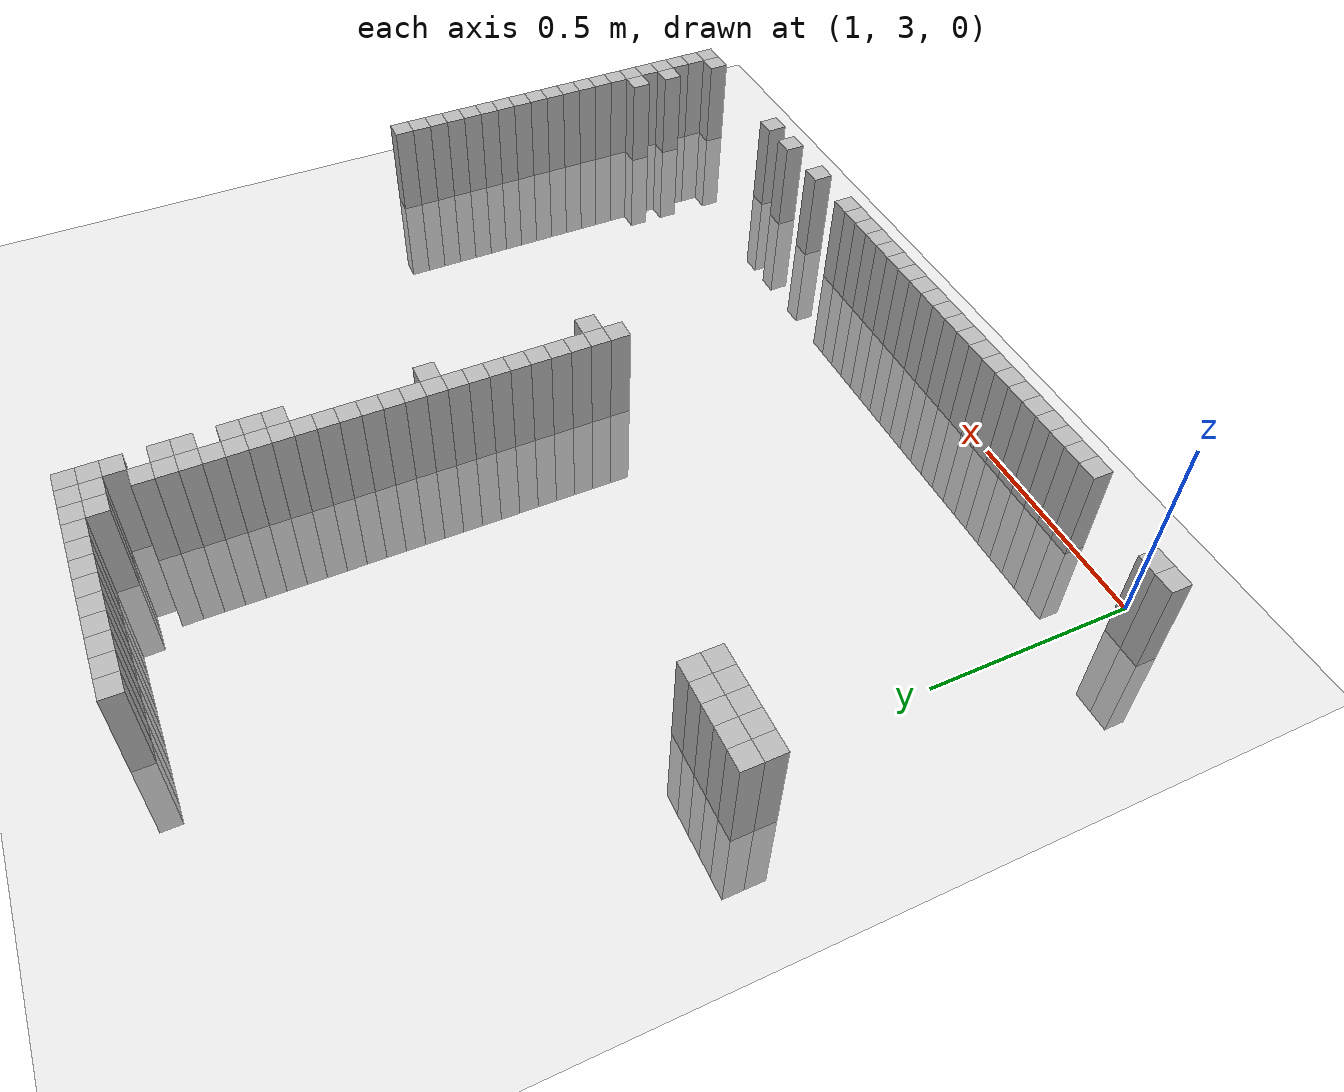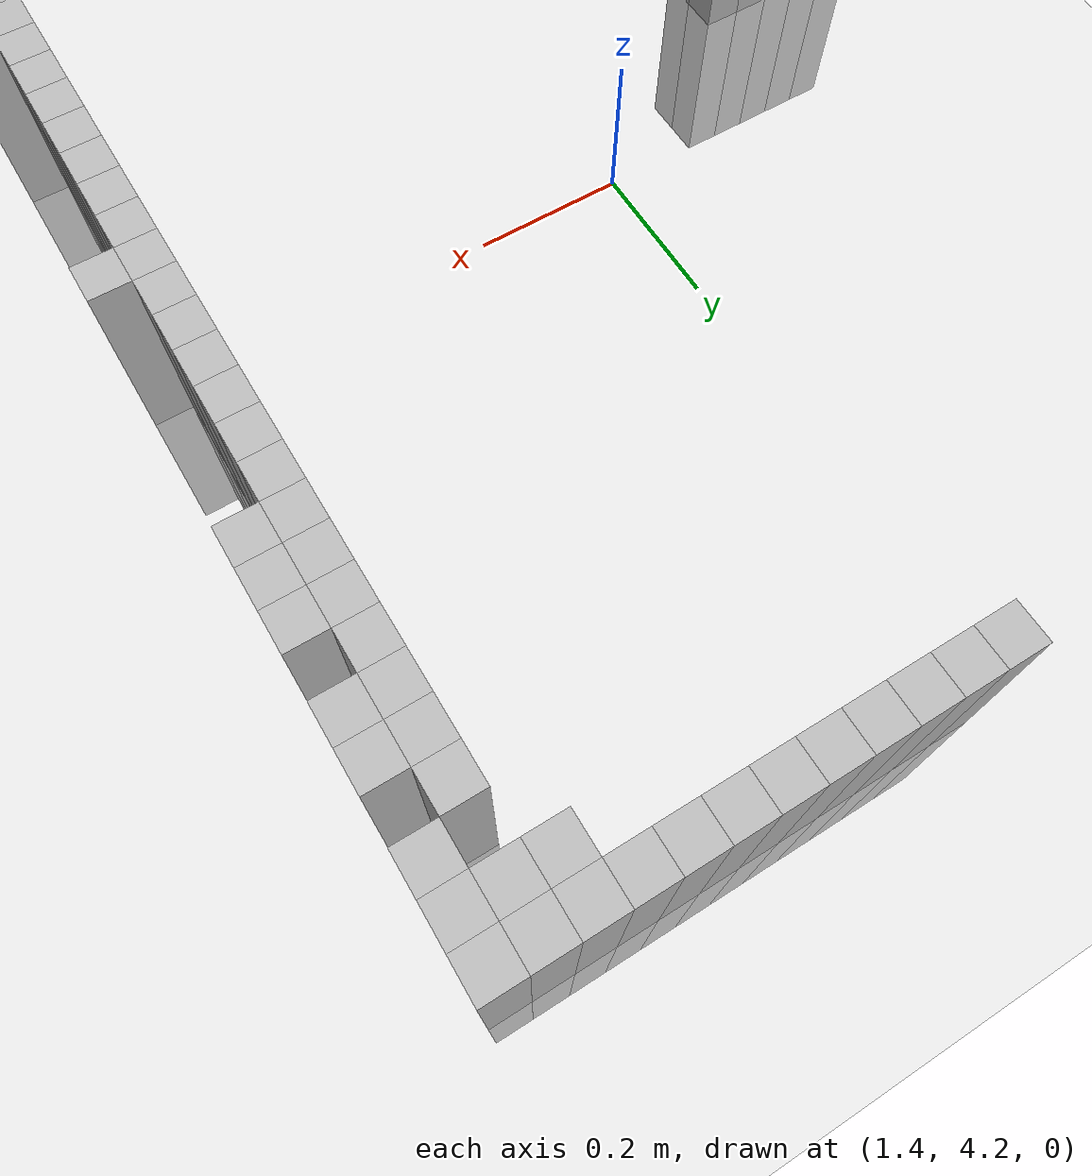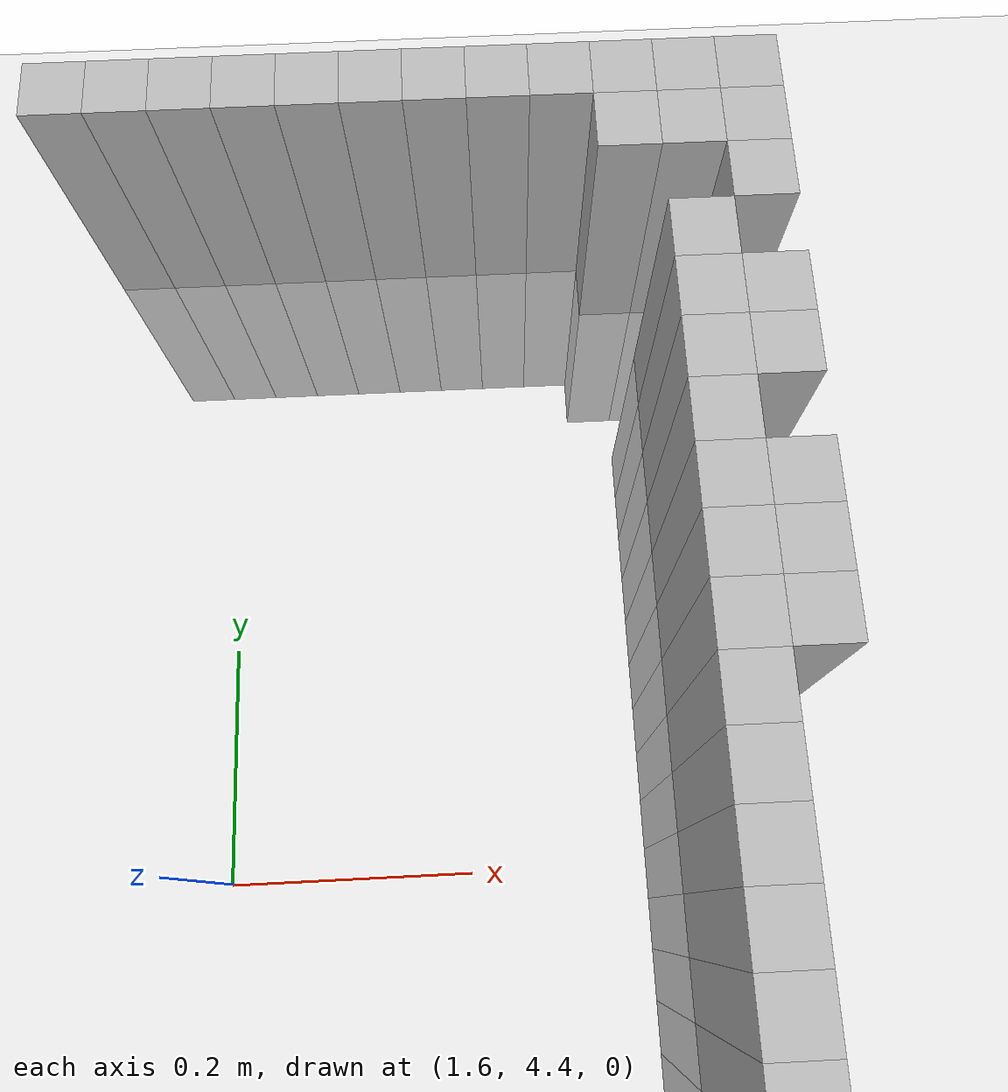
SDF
<sdf version="1.6">
 <world name="my_exploration_world">
  <include><uri>model://ground_plane</uri></include>
  <include><uri>model://sun</uri></include>
  <model name="obstacle_521">
   <pose>1.2000001668930054 3.0000001937150955 0 0 0 0</pose>
   <link name="link">
    <collision name="collision">
     <geometry><box><size>0.05000000074505806 0.05000000074505806 0.5</size></box></geometry>
    </collision>
    <visual name="visual">
     <geometry><box><size>0.05000000074505806 0.05000000074505806 0.5</size></box></geometry>
    </visual>
   </link>
   <static>true</static>
  </model>
  <model name="obstacle_522">
   <pose>1.2500001676380634 3.0000001937150955 0 0 0 0</pose>
   <link name="link">
    <collision name="collision">
     <geometry><box><size>0.05000000074505806 0.05000000074505806 0.5</size></box></geometry>
    </collision>
    <visual name="visual">
     <geometry><box><size>0.05000000074505806 0.05000000074505806 0.5</size></box></geometry>
    </visual>
   </link>
   <static>true</static>
  </model>
  <model name="obstacle_523">
   <pose>1.3000001683831215 3.0000001937150955 0 0 0 0</pose>
   <link name="link">
    <collision name="collision">
     <geometry><box><size>0.05000000074505806 0.05000000074505806 0.5</size></box></geometry>
    </collision>
    <visual name="visual">
     <geometry><box><size>0.05000000074505806 0.05000000074505806 0.5</size></box></geometry>
    </visual>
   </link>
   <static>true</static>
  </model>
  <model name="obstacle_524">
   <pose>1.3500001691281796 3.0000001937150955 0 0 0 0</pose>
   <link name="link">
    <collision name="collision">
     <geometry><box><size>0.05000000074505806 0.05000000074505806 0.5</size></box></geometry>
    </collision>
    <visual name="visual">
     <geometry><box><size>0.05000000074505806 0.05000000074505806 0.5</size></box></geometry>
    </visual>
   </link>
   <static>true</static>
  </model>
  <model name="obstacle_525">
   <pose>1.4000001698732376 3.0000001937150955 0 0 0 0</pose>
   <link name="link">
    <collision name="collision">
     <geometry><box><size>0.05000000074505806 0.05000000074505806 0.5</size></box></geometry>
    </collision>
    <visual name="visual">
     <geometry><box><size>0.05000000074505806 0.05000000074505806 0.5</size></box></geometry>
    </visual>
   </link>
   <static>true</static>
  </model>
  <model name="obstacle_526">
   <pose>1.4500001706182957 3.0000001937150955 0 0 0 0</pose>
   <link name="link">
    <collision name="collision">
     <geometry><box><size>0.05000000074505806 0.05000000074505806 0.5</size></box></geometry>
    </collision>
    <visual name="visual">
     <geometry><box><size>0.05000000074505806 0.05000000074505806 0.5</size></box></geometry>
    </visual>
   </link>
   <static>true</static>
  </model>
  <model name="obstacle_527">
   <pose>1.5000001713633537 3.0000001937150955 0 0 0 0</pose>
   <link name="link">
    <collision name="collision">
     <geometry><box><size>0.05000000074505806 0.05000000074505806 0.5</size></box></geometry>
    </collision>
    <visual name="visual">
     <geometry><box><size>0.05000000074505806 0.05000000074505806 0.5</size></box></geometry>
    </visual>
   </link>
   <static>true</static>
  </model>
  <model name="obstacle_528">
   <pose>1.5500001721084118 3.0000001937150955 0 0 0 0</pose>
   <link name="link">
    <collision name="collision">
     <geometry><box><size>0.05000000074505806 0.05000000074505806 0.5</size></box></geometry>
    </collision>
    <visual name="visual">
     <geometry><box><size>0.05000000074505806 0.05000000074505806 0.5</size></box></geometry>
    </visual>
   </link>
   <static>true</static>
  </model>
  <model name="obstacle_529">
   <pose>1.6000001728534698 3.0000001937150955 0 0 0 0</pose>
   <link name="link">
    <collision name="collision">
     <geometry><box><size>0.05000000074505806 0.05000000074505806 0.5</size></box></geometry>
    </collision>
    <visual name="visual">
     <geometry><box><size>0.05000000074505806 0.05000000074505806 0.5</size></box></geometry>
    </visual>
   </link>
   <static>true</static>
  </model>
  <model name="obstacle_530">
   <pose>1.650000173598528 3.0000001937150955 0 0 0 0</pose>
   <link name="link">
    <collision name="collision">
     <geometry><box><size>0.05000000074505806 0.05000000074505806 0.5</size></box></geometry>
    </collision>
    <visual name="visual">
     <geometry><box><size>0.05000000074505806 0.05000000074505806 0.5</size></box></geometry>
    </visual>
   </link>
   <static>true</static>
  </model>
  <model name="obstacle_531">
   <pose>1.700000174343586 3.0000001937150955 0 0 0 0</pose>
   <link name="link">
    <collision name="collision">
     <geometry><box><size>0.05000000074505806 0.05000000074505806 0.5</size></box></geometry>
    </collision>
    <visual name="visual">
     <geometry><box><size>0.05000000074505806 0.05000000074505806 0.5</size></box></geometry>
    </visual>
   </link>
   <static>true</static>
  </model>
  <model name="obstacle_532">
   <pose>1.750000175088644 3.0000001937150955 0 0 0 0</pose>
   <link name="link">
    <collision name="collision">
     <geometry><box><size>0.05000000074505806 0.05000000074505806 0.5</size></box></geometry>
    </collision>
    <visual name="visual">
     <geometry><box><size>0.05000000074505806 0.05000000074505806 0.5</size></box></geometry>
    </visual>
   </link>
   <static>true</static>
  </model>
  <model name="obstacle_533">
   <pose>1.800000175833702 3.0000001937150955 0 0 0 0</pose>
   <link name="link">
    <collision name="collision">
     <geometry><box><size>0.05000000074505806 0.05000000074505806 0.5</size></box></geometry>
    </collision>
    <visual name="visual">
     <geometry><box><size>0.05000000074505806 0.05000000074505806 0.5</size></box></geometry>
    </visual>
   </link>
   <static>true</static>
  </model>
  <model name="obstacle_534">
   <pose>1.8500001765787601 3.0000001937150955 0 0 0 0</pose>
   <link name="link">
    <collision name="collision">
     <geometry><box><size>0.05000000074505806 0.05000000074505806 0.5</size></box></geometry>
    </collision>
    <visual name="visual">
     <geometry><box><size>0.05000000074505806 0.05000000074505806 0.5</size></box></geometry>
    </visual>
   </link>
   <static>true</static>
  </model>
  <model name="obstacle_535">
   <pose>1.9000001773238182 3.0000001937150955 0 0 0 0</pose>
   <link name="link">
    <collision name="collision">
     <geometry><box><size>0.05000000074505806 0.05000000074505806 0.5</size></box></geometry>
    </collision>
    <visual name="visual">
     <geometry><box><size>0.05000000074505806 0.05000000074505806 0.5</size></box></geometry>
    </visual>
   </link>
   <static>true</static>
  </model>
  <model name="obstacle_536">
   <pose>1.9500001780688763 3.0000001937150955 0 0 0 0</pose>
   <link name="link">
    <collision name="collision">
     <geometry><box><size>0.05000000074505806 0.05000000074505806 0.5</size></box></geometry>
    </collision>
    <visual name="visual">
     <geometry><box><size>0.05000000074505806 0.05000000074505806 0.5</size></box></geometry>
    </visual>
   </link>
   <static>true</static>
  </model>
  <model name="obstacle_537">
   <pose>2.0000001788139343 3.0000001937150955 0 0 0 0</pose>
   <link name="link">
    <collision name="collision">
     <geometry><box><size>0.05000000074505806 0.05000000074505806 0.5</size></box></geometry>
    </collision>
    <visual name="visual">
     <geometry><box><size>0.05000000074505806 0.05000000074505806 0.5</size></box></geometry>
    </visual>
   </link>
   <static>true</static>
  </model>
  <model name="obstacle_538">
   <pose>2.0500001795589924 3.0000001937150955 0 0 0 0</pose>
   <link name="link">
    <collision name="collision">
     <geometry><box><size>0.05000000074505806 0.05000000074505806 0.5</size></box></geometry>
    </collision>
    <visual name="visual">
     <geometry><box><size>0.05000000074505806 0.05000000074505806 0.5</size></box></geometry>
    </visual>
   </link>
   <static>true</static>
  </model>
  <model name="obstacle_539">
   <pose>2.1000001803040504 3.0000001937150955 0 0 0 0</pose>
   <link name="link">
    <collision name="collision">
     <geometry><box><size>0.05000000074505806 0.05000000074505806 0.5</size></box></geometry>
    </collision>
    <visual name="visual">
     <geometry><box><size>0.05000000074505806 0.05000000074505806 0.5</size></box></geometry>
    </visual>
   </link>
   <static>true</static>
  </model>
  <model name="obstacle_540">
   <pose>2.1500001810491085 3.0000001937150955 0 0 0 0</pose>
   <link name="link">
    <collision name="collision">
     <geometry><box><size>0.05000000074505806 0.05000000074505806 0.5</size></box></geometry>
    </collision>
    <visual name="visual">
     <geometry><box><size>0.05000000074505806 0.05000000074505806 0.5</size></box></geometry>
    </visual>
   </link>
   <static>true</static>
  </model>
  <model name="obstacle_541">
   <pose>2.2000001817941666 3.0000001937150955 0 0 0 0</pose>
   <link name="link">
    <collision name="collision">
     <geometry><box><size>0.05000000074505806 0.05000000074505806 0.5</size></box></geometry>
    </collision>
    <visual name="visual">
     <geometry><box><size>0.05000000074505806 0.05000000074505806 0.5</size></box></geometry>
    </visual>
   </link>
   <static>true</static>
  </model>
  <model name="obstacle_542">
   <pose>2.3500001840293407 3.0000001937150955 0 0 0 0</pose>
   <link name="link">
    <collision name="collision">
     <geometry><box><size>0.05000000074505806 0.05000000074505806 0.5</size></box></geometry>
    </collision>
    <visual name="visual">
     <geometry><box><size>0.05000000074505806 0.05000000074505806 0.5</size></box></geometry>
    </visual>
   </link>
   <static>true</static>
  </model>
  <model name="obstacle_543">
   <pose>2.500000186264515 3.0000001937150955 0 0 0 0</pose>
   <link name="link">
    <collision name="collision">
     <geometry><box><size>0.05000000074505806 0.05000000074505806 0.5</size></box></geometry>
    </collision>
    <visual name="visual">
     <geometry><box><size>0.05000000074505806 0.05000000074505806 0.5</size></box></geometry>
    </visual>
   </link>
   <static>true</static>
  </model>
  <model name="obstacle_544">
   <pose>2.600000187754631 3.0000001937150955 0 0 0 0</pose>
   <link name="link">
    <collision name="collision">
     <geometry><box><size>0.05000000074505806 0.05000000074505806 0.5</size></box></geometry>
    </collision>
    <visual name="visual">
     <geometry><box><size>0.05000000074505806 0.05000000074505806 0.5</size></box></geometry>
    </visual>
   </link>
   <static>true</static>
  </model>
  <model name="obstacle_545">
   <pose>2.9500001929700375 3.0000001937150955 0 0 0 0</pose>
   <link name="link">
    <collision name="collision">
     <geometry><box><size>0.05000000074505806 0.05000000074505806 0.5</size></box></geometry>
    </collision>
    <visual name="visual">
     <geometry><box><size>0.05000000074505806 0.05000000074505806 0.5</size></box></geometry>
    </visual>
   </link>
   <static>true</static>
  </model>
  <model name="obstacle_546">
   <pose>3.0000001937150955 3.0000001937150955 0 0 0 0</pose>
   <link name="link">
    <collision name="collision">
     <geometry><box><size>0.05000000074505806 0.05000000074505806 0.5</size></box></geometry>
    </collision>
    <visual name="visual">
     <geometry><box><size>0.05000000074505806 0.05000000074505806 0.5</size></box></geometry>
    </visual>
   </link>
   <static>true</static>
  </model>
  <model name="obstacle_568">
   <pose>0.900000162422657 3.0500001944601536 0 0 0 0</pose>
   <link name="link">
    <collision name="collision">
     <geometry><box><size>0.05000000074505806 0.05000000074505806 0.5</size></box></geometry>
    </collision>
    <visual name="visual">
     <geometry><box><size>0.05000000074505806 0.05000000074505806 0.5</size></box></geometry>
    </visual>
   </link>
   <static>true</static>
  </model>
  <model name="obstacle_569">
   <pose>0.9500001631677151 3.0500001944601536 0 0 0 0</pose>
   <link name="link">
    <collision name="collision">
     <geometry><box><size>0.05000000074505806 0.05000000074505806 0.5</size></box></geometry>
    </collision>
    <visual name="visual">
     <geometry><box><size>0.05000000074505806 0.05000000074505806 0.5</size></box></geometry>
    </visual>
   </link>
   <static>true</static>
  </model>
  <model name="obstacle_570">
   <pose>3.0000001937150955 3.0500001944601536 0 0 0 0</pose>
   <link name="link">
    <collision name="collision">
     <geometry><box><size>0.05000000074505806 0.05000000074505806 0.5</size></box></geometry>
    </collision>
    <visual name="visual">
     <geometry><box><size>0.05000000074505806 0.05000000074505806 0.5</size></box></geometry>
    </visual>
   </link>
   <static>true</static>
  </model>
  <model name="obstacle_573">
   <pose>3.0000001937150955 3.1000001952052116 0 0 0 0</pose>
   <link name="link">
    <collision name="collision">
     <geometry><box><size>0.05000000074505806 0.05000000074505806 0.5</size></box></geometry>
    </collision>
    <visual name="visual">
     <geometry><box><size>0.05000000074505806 0.05000000074505806 0.5</size></box></geometry>
    </visual>
   </link>
   <static>true</static>
  </model>
  <model name="obstacle_575">
   <pose>2.9500001929700375 3.1500001959502697 0 0 0 0</pose>
   <link name="link">
    <collision name="collision">
     <geometry><box><size>0.05000000074505806 0.05000000074505806 0.5</size></box></geometry>
    </collision>
    <visual name="visual">
     <geometry><box><size>0.05000000074505806 0.05000000074505806 0.5</size></box></geometry>
    </visual>
   </link>
   <static>true</static>
  </model>
  <model name="obstacle_576">
   <pose>3.0000001937150955 3.1500001959502697 0 0 0 0</pose>
   <link name="link">
    <collision name="collision">
     <geometry><box><size>0.05000000074505806 0.05000000074505806 0.5</size></box></geometry>
    </collision>
    <visual name="visual">
     <geometry><box><size>0.05000000074505806 0.05000000074505806 0.5</size></box></geometry>
    </visual>
   </link>
   <static>true</static>
  </model>
  <model name="obstacle_578">
   <pose>3.0000001937150955 3.2000001966953278 0 0 0 0</pose>
   <link name="link">
    <collision name="collision">
     <geometry><box><size>0.05000000074505806 0.05000000074505806 0.5</size></box></geometry>
    </collision>
    <visual name="visual">
     <geometry><box><size>0.05000000074505806 0.05000000074505806 0.5</size></box></geometry>
    </visual>
   </link>
   <static>true</static>
  </model>
  <model name="obstacle_581">
   <pose>2.9500001929700375 3.250000197440386 0 0 0 0</pose>
   <link name="link">
    <collision name="collision">
     <geometry><box><size>0.05000000074505806 0.05000000074505806 0.5</size></box></geometry>
    </collision>
    <visual name="visual">
     <geometry><box><size>0.05000000074505806 0.05000000074505806 0.5</size></box></geometry>
    </visual>
   </link>
   <static>true</static>
  </model>
  <model name="obstacle_582">
   <pose>3.0000001937150955 3.250000197440386 0 0 0 0</pose>
   <link name="link">
    <collision name="collision">
     <geometry><box><size>0.05000000074505806 0.05000000074505806 0.5</size></box></geometry>
    </collision>
    <visual name="visual">
     <geometry><box><size>0.05000000074505806 0.05000000074505806 0.5</size></box></geometry>
    </visual>
   </link>
   <static>true</static>
  </model>
  <model name="obstacle_585">
   <pose>3.0000001937150955 3.300000198185444 0 0 0 0</pose>
   <link name="link">
    <collision name="collision">
     <geometry><box><size>0.05000000074505806 0.05000000074505806 0.5</size></box></geometry>
    </collision>
    <visual name="visual">
     <geometry><box><size>0.05000000074505806 0.05000000074505806 0.5</size></box></geometry>
    </visual>
   </link>
   <static>true</static>
  </model>
  <model name="obstacle_588">
   <pose>3.0000001937150955 3.350000198930502 0 0 0 0</pose>
   <link name="link">
    <collision name="collision">
     <geometry><box><size>0.05000000074505806 0.05000000074505806 0.5</size></box></geometry>
    </collision>
    <visual name="visual">
     <geometry><box><size>0.05000000074505806 0.05000000074505806 0.5</size></box></geometry>
    </visual>
   </link>
   <static>true</static>
  </model>
  <model name="obstacle_591">
   <pose>3.0000001937150955 3.40000019967556 0 0 0 0</pose>
   <link name="link">
    <collision name="collision">
     <geometry><box><size>0.05000000074505806 0.05000000074505806 0.5</size></box></geometry>
    </collision>
    <visual name="visual">
     <geometry><box><size>0.05000000074505806 0.05000000074505806 0.5</size></box></geometry>
    </visual>
   </link>
   <static>true</static>
  </model>
  <model name="obstacle_594">
   <pose>3.0000001937150955 3.450000200420618 0 0 0 0</pose>
   <link name="link">
    <collision name="collision">
     <geometry><box><size>0.05000000074505806 0.05000000074505806 0.5</size></box></geometry>
    </collision>
    <visual name="visual">
     <geometry><box><size>0.05000000074505806 0.05000000074505806 0.5</size></box></geometry>
    </visual>
   </link>
   <static>true</static>
  </model>
  <model name="obstacle_597">
   <pose>3.0000001937150955 3.500000201165676 0 0 0 0</pose>
   <link name="link">
    <collision name="collision">
     <geometry><box><size>0.05000000074505806 0.05000000074505806 0.5</size></box></geometry>
    </collision>
    <visual name="visual">
     <geometry><box><size>0.05000000074505806 0.05000000074505806 0.5</size></box></geometry>
    </visual>
   </link>
   <static>true</static>
  </model>
  <model name="obstacle_599">
   <pose>3.0000001937150955 3.550000201910734 0 0 0 0</pose>
   <link name="link">
    <collision name="collision">
     <geometry><box><size>0.05000000074505806 0.05000000074505806 0.5</size></box></geometry>
    </collision>
    <visual name="visual">
     <geometry><box><size>0.05000000074505806 0.05000000074505806 0.5</size></box></geometry>
    </visual>
   </link>
   <static>true</static>
  </model>
  <model name="obstacle_601">
   <pose>3.0000001937150955 3.6000002026557922 0 0 0 0</pose>
   <link name="link">
    <collision name="collision">
     <geometry><box><size>0.05000000074505806 0.05000000074505806 0.5</size></box></geometry>
    </collision>
    <visual name="visual">
     <geometry><box><size>0.05000000074505806 0.05000000074505806 0.5</size></box></geometry>
    </visual>
   </link>
   <static>true</static>
  </model>
  <model name="obstacle_603">
   <pose>3.0000001937150955 3.6500002034008503 0 0 0 0</pose>
   <link name="link">
    <collision name="collision">
     <geometry><box><size>0.05000000074505806 0.05000000074505806 0.5</size></box></geometry>
    </collision>
    <visual name="visual">
     <geometry><box><size>0.05000000074505806 0.05000000074505806 0.5</size></box></geometry>
    </visual>
   </link>
   <static>true</static>
  </model>
  <model name="obstacle_605">
   <pose>3.0000001937150955 3.7000002041459084 0 0 0 0</pose>
   <link name="link">
    <collision name="collision">
     <geometry><box><size>0.05000000074505806 0.05000000074505806 0.5</size></box></geometry>
    </collision>
    <visual name="visual">
     <geometry><box><size>0.05000000074505806 0.05000000074505806 0.5</size></box></geometry>
    </visual>
   </link>
   <static>true</static>
  </model>
  <model name="obstacle_607">
   <pose>2.0000001788139343 3.7500002048909664 0 0 0 0</pose>
   <link name="link">
    <collision name="collision">
     <geometry><box><size>0.05000000074505806 0.05000000074505806 0.5</size></box></geometry>
    </collision>
    <visual name="visual">
     <geometry><box><size>0.05000000074505806 0.05000000074505806 0.5</size></box></geometry>
    </visual>
   </link>
   <static>true</static>
  </model>
  <model name="obstacle_608">
   <pose>3.0000001937150955 3.7500002048909664 0 0 0 0</pose>
   <link name="link">
    <collision name="collision">
     <geometry><box><size>0.05000000074505806 0.05000000074505806 0.5</size></box></geometry>
    </collision>
    <visual name="visual">
     <geometry><box><size>0.05000000074505806 0.05000000074505806 0.5</size></box></geometry>
    </visual>
   </link>
   <static>true</static>
  </model>
  <model name="obstacle_611">
   <pose>2.0000001788139343 3.8000002056360245 0 0 0 0</pose>
   <link name="link">
    <collision name="collision">
     <geometry><box><size>0.05000000074505806 0.05000000074505806 0.5</size></box></geometry>
    </collision>
    <visual name="visual">
     <geometry><box><size>0.05000000074505806 0.05000000074505806 0.5</size></box></geometry>
    </visual>
   </link>
   <static>true</static>
  </model>
  <model name="obstacle_612">
   <pose>2.0500001795589924 3.8000002056360245 0 0 0 0</pose>
   <link name="link">
    <collision name="collision">
     <geometry><box><size>0.05000000074505806 0.05000000074505806 0.5</size></box></geometry>
    </collision>
    <visual name="visual">
     <geometry><box><size>0.05000000074505806 0.05000000074505806 0.5</size></box></geometry>
    </visual>
   </link>
   <static>true</static>
  </model>
  <model name="obstacle_613">
   <pose>3.0000001937150955 3.8000002056360245 0 0 0 0</pose>
   <link name="link">
    <collision name="collision">
     <geometry><box><size>0.05000000074505806 0.05000000074505806 0.5</size></box></geometry>
    </collision>
    <visual name="visual">
     <geometry><box><size>0.05000000074505806 0.05000000074505806 0.5</size></box></geometry>
    </visual>
   </link>
   <static>true</static>
  </model>
  <model name="obstacle_615">
   <pose>2.0000001788139343 3.8500002063810825 0 0 0 0</pose>
   <link name="link">
    <collision name="collision">
     <geometry><box><size>0.05000000074505806 0.05000000074505806 0.5</size></box></geometry>
    </collision>
    <visual name="visual">
     <geometry><box><size>0.05000000074505806 0.05000000074505806 0.5</size></box></geometry>
    </visual>
   </link>
   <static>true</static>
  </model>
  <model name="obstacle_616">
   <pose>3.0000001937150955 3.8500002063810825 0 0 0 0</pose>
   <link name="link">
    <collision name="collision">
     <geometry><box><size>0.05000000074505806 0.05000000074505806 0.5</size></box></geometry>
    </collision>
    <visual name="visual">
     <geometry><box><size>0.05000000074505806 0.05000000074505806 0.5</size></box></geometry>
    </visual>
   </link>
   <static>true</static>
  </model>
  <model name="obstacle_618">
   <pose>2.0000001788139343 3.9000002071261406 0 0 0 0</pose>
   <link name="link">
    <collision name="collision">
     <geometry><box><size>0.05000000074505806 0.05000000074505806 0.5</size></box></geometry>
    </collision>
    <visual name="visual">
     <geometry><box><size>0.05000000074505806 0.05000000074505806 0.5</size></box></geometry>
    </visual>
   </link>
   <static>true</static>
  </model>
  <model name="obstacle_619">
   <pose>3.0000001937150955 3.9000002071261406 0 0 0 0</pose>
   <link name="link">
    <collision name="collision">
     <geometry><box><size>0.05000000074505806 0.05000000074505806 0.5</size></box></geometry>
    </collision>
    <visual name="visual">
     <geometry><box><size>0.05000000074505806 0.05000000074505806 0.5</size></box></geometry>
    </visual>
   </link>
   <static>true</static>
  </model>
  <model name="obstacle_644">
   <pose>0.900000162422657 3.9500002078711987 0 0 0 0</pose>
   <link name="link">
    <collision name="collision">
     <geometry><box><size>0.05000000074505806 0.05000000074505806 0.5</size></box></geometry>
    </collision>
    <visual name="visual">
     <geometry><box><size>0.05000000074505806 0.05000000074505806 0.5</size></box></geometry>
    </visual>
   </link>
   <static>true</static>
  </model>
  <model name="obstacle_645">
   <pose>0.9500001631677151 3.9500002078711987 0 0 0 0</pose>
   <link name="link">
    <collision name="collision">
     <geometry><box><size>0.05000000074505806 0.05000000074505806 0.5</size></box></geometry>
    </collision>
    <visual name="visual">
     <geometry><box><size>0.05000000074505806 0.05000000074505806 0.5</size></box></geometry>
    </visual>
   </link>
   <static>true</static>
  </model>
  <model name="obstacle_646">
   <pose>1.0000001639127731 3.9500002078711987 0 0 0 0</pose>
   <link name="link">
    <collision name="collision">
     <geometry><box><size>0.05000000074505806 0.05000000074505806 0.5</size></box></geometry>
    </collision>
    <visual name="visual">
     <geometry><box><size>0.05000000074505806 0.05000000074505806 0.5</size></box></geometry>
    </visual>
   </link>
   <static>true</static>
  </model>
  <model name="obstacle_647">
   <pose>1.0500001646578312 3.9500002078711987 0 0 0 0</pose>
   <link name="link">
    <collision name="collision">
     <geometry><box><size>0.05000000074505806 0.05000000074505806 0.5</size></box></geometry>
    </collision>
    <visual name="visual">
     <geometry><box><size>0.05000000074505806 0.05000000074505806 0.5</size></box></geometry>
    </visual>
   </link>
   <static>true</static>
  </model>
  <model name="obstacle_648">
   <pose>1.1000001654028893 3.9500002078711987 0 0 0 0</pose>
   <link name="link">
    <collision name="collision">
     <geometry><box><size>0.05000000074505806 0.05000000074505806 0.5</size></box></geometry>
    </collision>
    <visual name="visual">
     <geometry><box><size>0.05000000074505806 0.05000000074505806 0.5</size></box></geometry>
    </visual>
   </link>
   <static>true</static>
  </model>
  <model name="obstacle_649">
   <pose>2.0000001788139343 3.9500002078711987 0 0 0 0</pose>
   <link name="link">
    <collision name="collision">
     <geometry><box><size>0.05000000074505806 0.05000000074505806 0.5</size></box></geometry>
    </collision>
    <visual name="visual">
     <geometry><box><size>0.05000000074505806 0.05000000074505806 0.5</size></box></geometry>
    </visual>
   </link>
   <static>true</static>
  </model>
  <model name="obstacle_650">
   <pose>3.0000001937150955 3.9500002078711987 0 0 0 0</pose>
   <link name="link">
    <collision name="collision">
     <geometry><box><size>0.05000000074505806 0.05000000074505806 0.5</size></box></geometry>
    </collision>
    <visual name="visual">
     <geometry><box><size>0.05000000074505806 0.05000000074505806 0.5</size></box></geometry>
    </visual>
   </link>
   <static>true</static>
  </model>
  <model name="obstacle_687">
   <pose>0.900000162422657 4.000000208616257 0 0 0 0</pose>
   <link name="link">
    <collision name="collision">
     <geometry><box><size>0.05000000074505806 0.05000000074505806 0.5</size></box></geometry>
    </collision>
    <visual name="visual">
     <geometry><box><size>0.05000000074505806 0.05000000074505806 0.5</size></box></geometry>
    </visual>
   </link>
   <static>true</static>
  </model>
  <model name="obstacle_688">
   <pose>0.9500001631677151 4.000000208616257 0 0 0 0</pose>
   <link name="link">
    <collision name="collision">
     <geometry><box><size>0.05000000074505806 0.05000000074505806 0.5</size></box></geometry>
    </collision>
    <visual name="visual">
     <geometry><box><size>0.05000000074505806 0.05000000074505806 0.5</size></box></geometry>
    </visual>
   </link>
   <static>true</static>
  </model>
  <model name="obstacle_689">
   <pose>1.0000001639127731 4.000000208616257 0 0 0 0</pose>
   <link name="link">
    <collision name="collision">
     <geometry><box><size>0.05000000074505806 0.05000000074505806 0.5</size></box></geometry>
    </collision>
    <visual name="visual">
     <geometry><box><size>0.05000000074505806 0.05000000074505806 0.5</size></box></geometry>
    </visual>
   </link>
   <static>true</static>
  </model>
  <model name="obstacle_690">
   <pose>1.0500001646578312 4.000000208616257 0 0 0 0</pose>
   <link name="link">
    <collision name="collision">
     <geometry><box><size>0.05000000074505806 0.05000000074505806 0.5</size></box></geometry>
    </collision>
    <visual name="visual">
     <geometry><box><size>0.05000000074505806 0.05000000074505806 0.5</size></box></geometry>
    </visual>
   </link>
   <static>true</static>
  </model>
  <model name="obstacle_691">
   <pose>1.1000001654028893 4.000000208616257 0 0 0 0</pose>
   <link name="link">
    <collision name="collision">
     <geometry><box><size>0.05000000074505806 0.05000000074505806 0.5</size></box></geometry>
    </collision>
    <visual name="visual">
     <geometry><box><size>0.05000000074505806 0.05000000074505806 0.5</size></box></geometry>
    </visual>
   </link>
   <static>true</static>
  </model>
  <model name="obstacle_692">
   <pose>2.0000001788139343 4.000000208616257 0 0 0 0</pose>
   <link name="link">
    <collision name="collision">
     <geometry><box><size>0.05000000074505806 0.05000000074505806 0.5</size></box></geometry>
    </collision>
    <visual name="visual">
     <geometry><box><size>0.05000000074505806 0.05000000074505806 0.5</size></box></geometry>
    </visual>
   </link>
   <static>true</static>
  </model>
  <model name="obstacle_693">
   <pose>2.0000001788139343 4.050000209361315 0 0 0 0</pose>
   <link name="link">
    <collision name="collision">
     <geometry><box><size>0.05000000074505806 0.05000000074505806 0.5</size></box></geometry>
    </collision>
    <visual name="visual">
     <geometry><box><size>0.05000000074505806 0.05000000074505806 0.5</size></box></geometry>
    </visual>
   </link>
   <static>true</static>
  </model>
  <model name="obstacle_694">
   <pose>2.0000001788139343 4.100000210106373 0 0 0 0</pose>
   <link name="link">
    <collision name="collision">
     <geometry><box><size>0.05000000074505806 0.05000000074505806 0.5</size></box></geometry>
    </collision>
    <visual name="visual">
     <geometry><box><size>0.05000000074505806 0.05000000074505806 0.5</size></box></geometry>
    </visual>
   </link>
   <static>true</static>
  </model>
  <model name="obstacle_695">
   <pose>2.0000001788139343 4.150000210851431 0 0 0 0</pose>
   <link name="link">
    <collision name="collision">
     <geometry><box><size>0.05000000074505806 0.05000000074505806 0.5</size></box></geometry>
    </collision>
    <visual name="visual">
     <geometry><box><size>0.05000000074505806 0.05000000074505806 0.5</size></box></geometry>
    </visual>
   </link>
   <static>true</static>
  </model>
  <model name="obstacle_696">
   <pose>2.0000001788139343 4.200000211596489 0 0 0 0</pose>
   <link name="link">
    <collision name="collision">
     <geometry><box><size>0.05000000074505806 0.05000000074505806 0.5</size></box></geometry>
    </collision>
    <visual name="visual">
     <geometry><box><size>0.05000000074505806 0.05000000074505806 0.5</size></box></geometry>
    </visual>
   </link>
   <static>true</static>
  </model>
  <model name="obstacle_697">
   <pose>2.0500001795589924 4.200000211596489 0 0 0 0</pose>
   <link name="link">
    <collision name="collision">
     <geometry><box><size>0.05000000074505806 0.05000000074505806 0.5</size></box></geometry>
    </collision>
    <visual name="visual">
     <geometry><box><size>0.05000000074505806 0.05000000074505806 0.5</size></box></geometry>
    </visual>
   </link>
   <static>true</static>
  </model>
  <model name="obstacle_698">
   <pose>2.0000001788139343 4.250000212341547 0 0 0 0</pose>
   <link name="link">
    <collision name="collision">
     <geometry><box><size>0.05000000074505806 0.05000000074505806 0.5</size></box></geometry>
    </collision>
    <visual name="visual">
     <geometry><box><size>0.05000000074505806 0.05000000074505806 0.5</size></box></geometry>
    </visual>
   </link>
   <static>true</static>
  </model>
  <model name="obstacle_699">
   <pose>2.0000001788139343 4.300000213086605 0 0 0 0</pose>
   <link name="link">
    <collision name="collision">
     <geometry><box><size>0.05000000074505806 0.05000000074505806 0.5</size></box></geometry>
    </collision>
    <visual name="visual">
     <geometry><box><size>0.05000000074505806 0.05000000074505806 0.5</size></box></geometry>
    </visual>
   </link>
   <static>true</static>
  </model>
  <model name="obstacle_700">
   <pose>2.0000001788139343 4.350000213831663 0 0 0 0</pose>
   <link name="link">
    <collision name="collision">
     <geometry><box><size>0.05000000074505806 0.05000000074505806 0.5</size></box></geometry>
    </collision>
    <visual name="visual">
     <geometry><box><size>0.05000000074505806 0.05000000074505806 0.5</size></box></geometry>
    </visual>
   </link>
   <static>true</static>
  </model>
  <model name="obstacle_701">
   <pose>2.0000001788139343 4.400000214576721 0 0 0 0</pose>
   <link name="link">
    <collision name="collision">
     <geometry><box><size>0.05000000074505806 0.05000000074505806 0.5</size></box></geometry>
    </collision>
    <visual name="visual">
     <geometry><box><size>0.05000000074505806 0.05000000074505806 0.5</size></box></geometry>
    </visual>
   </link>
   <static>true</static>
  </model>
  <model name="obstacle_702">
   <pose>2.0000001788139343 4.450000215321779 0 0 0 0</pose>
   <link name="link">
    <collision name="collision">
     <geometry><box><size>0.05000000074505806 0.05000000074505806 0.5</size></box></geometry>
    </collision>
    <visual name="visual">
     <geometry><box><size>0.05000000074505806 0.05000000074505806 0.5</size></box></geometry>
    </visual>
   </link>
   <static>true</static>
  </model>
  <model name="obstacle_703">
   <pose>2.0000001788139343 4.500000216066837 0 0 0 0</pose>
   <link name="link">
    <collision name="collision">
     <geometry><box><size>0.05000000074505806 0.05000000074505806 0.5</size></box></geometry>
    </collision>
    <visual name="visual">
     <geometry><box><size>0.05000000074505806 0.05000000074505806 0.5</size></box></geometry>
    </visual>
   </link>
   <static>true</static>
  </model>
  <model name="obstacle_704">
   <pose>2.0000001788139343 4.550000216811895 0 0 0 0</pose>
   <link name="link">
    <collision name="collision">
     <geometry><box><size>0.05000000074505806 0.05000000074505806 0.5</size></box></geometry>
    </collision>
    <visual name="visual">
     <geometry><box><size>0.05000000074505806 0.05000000074505806 0.5</size></box></geometry>
    </visual>
   </link>
   <static>true</static>
  </model>
  <model name="obstacle_705">
   <pose>2.0500001795589924 4.550000216811895 0 0 0 0</pose>
   <link name="link">
    <collision name="collision">
     <geometry><box><size>0.05000000074505806 0.05000000074505806 0.5</size></box></geometry>
    </collision>
    <visual name="visual">
     <geometry><box><size>0.05000000074505806 0.05000000074505806 0.5</size></box></geometry>
    </visual>
   </link>
   <static>true</static>
  </model>
  <model name="obstacle_706">
   <pose>2.0000001788139343 4.600000217556953 0 0 0 0</pose>
   <link name="link">
    <collision name="collision">
     <geometry><box><size>0.05000000074505806 0.05000000074505806 0.5</size></box></geometry>
    </collision>
    <visual name="visual">
     <geometry><box><size>0.05000000074505806 0.05000000074505806 0.5</size></box></geometry>
    </visual>
   </link>
   <static>true</static>
  </model>
  <model name="obstacle_707">
   <pose>2.0500001795589924 4.600000217556953 0 0 0 0</pose>
   <link name="link">
    <collision name="collision">
     <geometry><box><size>0.05000000074505806 0.05000000074505806 0.5</size></box></geometry>
    </collision>
    <visual name="visual">
     <geometry><box><size>0.05000000074505806 0.05000000074505806 0.5</size></box></geometry>
    </visual>
   </link>
   <static>true</static>
  </model>
  <model name="obstacle_708">
   <pose>2.0000001788139343 4.6500002183020115 0 0 0 0</pose>
   <link name="link">
    <collision name="collision">
     <geometry><box><size>0.05000000074505806 0.05000000074505806 0.5</size></box></geometry>
    </collision>
    <visual name="visual">
     <geometry><box><size>0.05000000074505806 0.05000000074505806 0.5</size></box></geometry>
    </visual>
   </link>
   <static>true</static>
  </model>
  <model name="obstacle_709">
   <pose>2.0500001795589924 4.6500002183020115 0 0 0 0</pose>
   <link name="link">
    <collision name="collision">
     <geometry><box><size>0.05000000074505806 0.05000000074505806 0.5</size></box></geometry>
    </collision>
    <visual name="visual">
     <geometry><box><size>0.05000000074505806 0.05000000074505806 0.5</size></box></geometry>
    </visual>
   </link>
   <static>true</static>
  </model>
  <model name="obstacle_710">
   <pose>2.0000001788139343 4.7000002190470695 0 0 0 0</pose>
   <link name="link">
    <collision name="collision">
     <geometry><box><size>0.05000000074505806 0.05000000074505806 0.5</size></box></geometry>
    </collision>
    <visual name="visual">
     <geometry><box><size>0.05000000074505806 0.05000000074505806 0.5</size></box></geometry>
    </visual>
   </link>
   <static>true</static>
  </model>
  <model name="obstacle_711">
   <pose>2.0000001788139343 4.750000219792128 0 0 0 0</pose>
   <link name="link">
    <collision name="collision">
     <geometry><box><size>0.05000000074505806 0.05000000074505806 0.5</size></box></geometry>
    </collision>
    <visual name="visual">
     <geometry><box><size>0.05000000074505806 0.05000000074505806 0.5</size></box></geometry>
    </visual>
   </link>
   <static>true</static>
  </model>
  <model name="obstacle_712">
   <pose>2.0500001795589924 4.750000219792128 0 0 0 0</pose>
   <link name="link">
    <collision name="collision">
     <geometry><box><size>0.05000000074505806 0.05000000074505806 0.5</size></box></geometry>
    </collision>
    <visual name="visual">
     <geometry><box><size>0.05000000074505806 0.05000000074505806 0.5</size></box></geometry>
    </visual>
   </link>
   <static>true</static>
  </model>
  <model name="obstacle_713">
   <pose>2.0000001788139343 4.800000220537186 0 0 0 0</pose>
   <link name="link">
    <collision name="collision">
     <geometry><box><size>0.05000000074505806 0.05000000074505806 0.5</size></box></geometry>
    </collision>
    <visual name="visual">
     <geometry><box><size>0.05000000074505806 0.05000000074505806 0.5</size></box></geometry>
    </visual>
   </link>
   <static>true</static>
  </model>
  <model name="obstacle_714">
   <pose>2.0500001795589924 4.800000220537186 0 0 0 0</pose>
   <link name="link">
    <collision name="collision">
     <geometry><box><size>0.05000000074505806 0.05000000074505806 0.5</size></box></geometry>
    </collision>
    <visual name="visual">
     <geometry><box><size>0.05000000074505806 0.05000000074505806 0.5</size></box></geometry>
    </visual>
   </link>
   <static>true</static>
  </model>
  <model name="obstacle_715">
   <pose>2.0000001788139343 4.850000221282244 0 0 0 0</pose>
   <link name="link">
    <collision name="collision">
     <geometry><box><size>0.05000000074505806 0.05000000074505806 0.5</size></box></geometry>
    </collision>
    <visual name="visual">
     <geometry><box><size>0.05000000074505806 0.05000000074505806 0.5</size></box></geometry>
    </visual>
   </link>
   <static>true</static>
  </model>
  <model name="obstacle_716">
   <pose>2.0500001795589924 4.900000222027302 0 0 0 0</pose>
   <link name="link">
    <collision name="collision">
     <geometry><box><size>0.05000000074505806 0.05000000074505806 0.5</size></box></geometry>
    </collision>
    <visual name="visual">
     <geometry><box><size>0.05000000074505806 0.05000000074505806 0.5</size></box></geometry>
    </visual>
   </link>
   <static>true</static>
  </model>
  <model name="obstacle_717">
   <pose>1.9500001780688763 4.95000022277236 0 0 0 0</pose>
   <link name="link">
    <collision name="collision">
     <geometry><box><size>0.05000000074505806 0.05000000074505806 0.5</size></box></geometry>
    </collision>
    <visual name="visual">
     <geometry><box><size>0.05000000074505806 0.05000000074505806 0.5</size></box></geometry>
    </visual>
   </link>
   <static>true</static>
  </model>
  <model name="obstacle_718">
   <pose>2.0000001788139343 4.95000022277236 0 0 0 0</pose>
   <link name="link">
    <collision name="collision">
     <geometry><box><size>0.05000000074505806 0.05000000074505806 0.5</size></box></geometry>
    </collision>
    <visual name="visual">
     <geometry><box><size>0.05000000074505806 0.05000000074505806 0.5</size></box></geometry>
    </visual>
   </link>
   <static>true</static>
  </model>
  <model name="obstacle_719">
   <pose>2.0500001795589924 4.95000022277236 0 0 0 0</pose>
   <link name="link">
    <collision name="collision">
     <geometry><box><size>0.05000000074505806 0.05000000074505806 0.5</size></box></geometry>
    </collision>
    <visual name="visual">
     <geometry><box><size>0.05000000074505806 0.05000000074505806 0.5</size></box></geometry>
    </visual>
   </link>
   <static>true</static>
  </model>
  <model name="obstacle_720">
   <pose>1.5000001713633537 5.000000223517418 0 0 0 0</pose>
   <link name="link">
    <collision name="collision">
     <geometry><box><size>0.05000000074505806 0.05000000074505806 0.5</size></box></geometry>
    </collision>
    <visual name="visual">
     <geometry><box><size>0.05000000074505806 0.05000000074505806 0.5</size></box></geometry>
    </visual>
   </link>
   <static>true</static>
  </model>
  <model name="obstacle_721">
   <pose>1.5500001721084118 5.000000223517418 0 0 0 0</pose>
   <link name="link">
    <collision name="collision">
     <geometry><box><size>0.05000000074505806 0.05000000074505806 0.5</size></box></geometry>
    </collision>
    <visual name="visual">
     <geometry><box><size>0.05000000074505806 0.05000000074505806 0.5</size></box></geometry>
    </visual>
   </link>
   <static>true</static>
  </model>
  <model name="obstacle_722">
   <pose>1.6000001728534698 5.000000223517418 0 0 0 0</pose>
   <link name="link">
    <collision name="collision">
     <geometry><box><size>0.05000000074505806 0.05000000074505806 0.5</size></box></geometry>
    </collision>
    <visual name="visual">
     <geometry><box><size>0.05000000074505806 0.05000000074505806 0.5</size></box></geometry>
    </visual>
   </link>
   <static>true</static>
  </model>
  <model name="obstacle_723">
   <pose>1.650000173598528 5.000000223517418 0 0 0 0</pose>
   <link name="link">
    <collision name="collision">
     <geometry><box><size>0.05000000074505806 0.05000000074505806 0.5</size></box></geometry>
    </collision>
    <visual name="visual">
     <geometry><box><size>0.05000000074505806 0.05000000074505806 0.5</size></box></geometry>
    </visual>
   </link>
   <static>true</static>
  </model>
  <model name="obstacle_724">
   <pose>1.700000174343586 5.000000223517418 0 0 0 0</pose>
   <link name="link">
    <collision name="collision">
     <geometry><box><size>0.05000000074505806 0.05000000074505806 0.5</size></box></geometry>
    </collision>
    <visual name="visual">
     <geometry><box><size>0.05000000074505806 0.05000000074505806 0.5</size></box></geometry>
    </visual>
   </link>
   <static>true</static>
  </model>
  <model name="obstacle_725">
   <pose>1.750000175088644 5.000000223517418 0 0 0 0</pose>
   <link name="link">
    <collision name="collision">
     <geometry><box><size>0.05000000074505806 0.05000000074505806 0.5</size></box></geometry>
    </collision>
    <visual name="visual">
     <geometry><box><size>0.05000000074505806 0.05000000074505806 0.5</size></box></geometry>
    </visual>
   </link>
   <static>true</static>
  </model>
  <model name="obstacle_726">
   <pose>1.800000175833702 5.000000223517418 0 0 0 0</pose>
   <link name="link">
    <collision name="collision">
     <geometry><box><size>0.05000000074505806 0.05000000074505806 0.5</size></box></geometry>
    </collision>
    <visual name="visual">
     <geometry><box><size>0.05000000074505806 0.05000000074505806 0.5</size></box></geometry>
    </visual>
   </link>
   <static>true</static>
  </model>
  <model name="obstacle_727">
   <pose>1.8500001765787601 5.000000223517418 0 0 0 0</pose>
   <link name="link">
    <collision name="collision">
     <geometry><box><size>0.05000000074505806 0.05000000074505806 0.5</size></box></geometry>
    </collision>
    <visual name="visual">
     <geometry><box><size>0.05000000074505806 0.05000000074505806 0.5</size></box></geometry>
    </visual>
   </link>
   <static>true</static>
  </model>
  <model name="obstacle_728">
   <pose>1.9000001773238182 5.000000223517418 0 0 0 0</pose>
   <link name="link">
    <collision name="collision">
     <geometry><box><size>0.05000000074505806 0.05000000074505806 0.5</size></box></geometry>
    </collision>
    <visual name="visual">
     <geometry><box><size>0.05000000074505806 0.05000000074505806 0.5</size></box></geometry>
    </visual>
   </link>
   <static>true</static>
  </model>
  <model name="obstacle_729">
   <pose>1.9500001780688763 5.000000223517418 0 0 0 0</pose>
   <link name="link">
    <collision name="collision">
     <geometry><box><size>0.05000000074505806 0.05000000074505806 0.5</size></box></geometry>
    </collision>
    <visual name="visual">
     <geometry><box><size>0.05000000074505806 0.05000000074505806 0.5</size></box></geometry>
    </visual>
   </link>
   <static>true</static>
  </model>
  <model name="obstacle_730">
   <pose>2.0000001788139343 5.000000223517418 0 0 0 0</pose>
   <link name="link">
    <collision name="collision">
     <geometry><box><size>0.05000000074505806 0.05000000074505806 0.5</size></box></geometry>
    </collision>
    <visual name="visual">
     <geometry><box><size>0.05000000074505806 0.05000000074505806 0.5</size></box></geometry>
    </visual>
   </link>
   <static>true</static>
  </model>
  <model name="obstacle_731">
   <pose>2.0500001795589924 5.000000223517418 0 0 0 0</pose>
   <link name="link">
    <collision name="collision">
     <geometry><box><size>0.05000000074505806 0.05000000074505806 0.5</size></box></geometry>
    </collision>
    <visual name="visual">
     <geometry><box><size>0.05000000074505806 0.05000000074505806 0.5</size></box></geometry>
    </visual>
   </link>
   <static>true</static>
  </model>
 </world>
</sdf>
